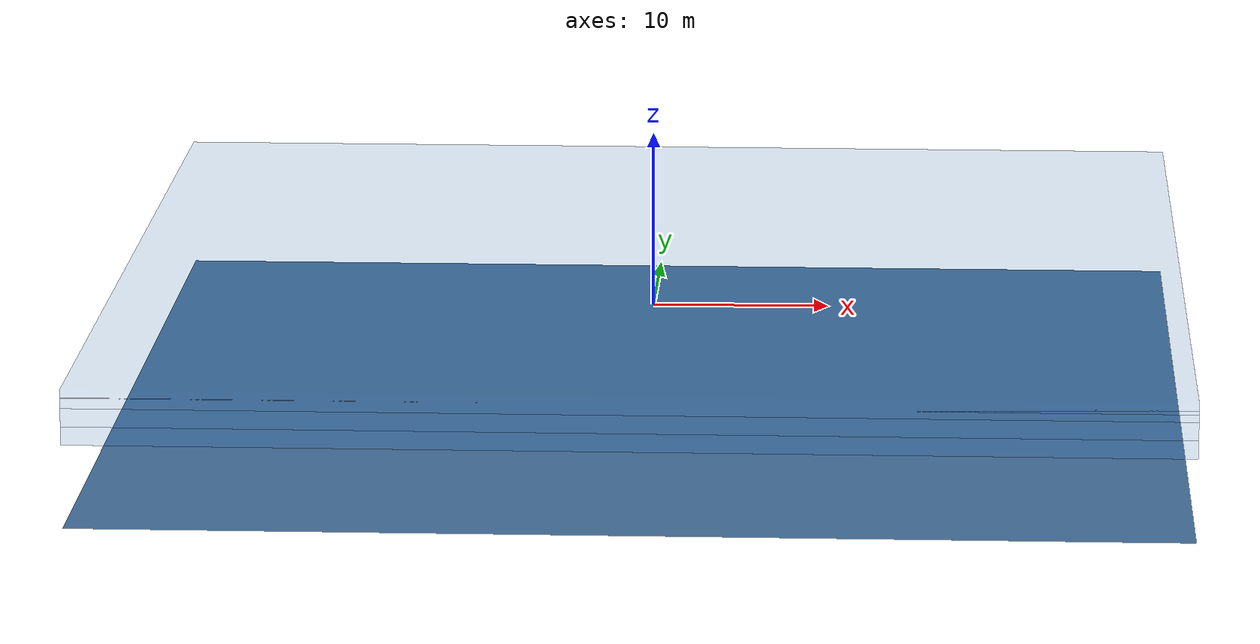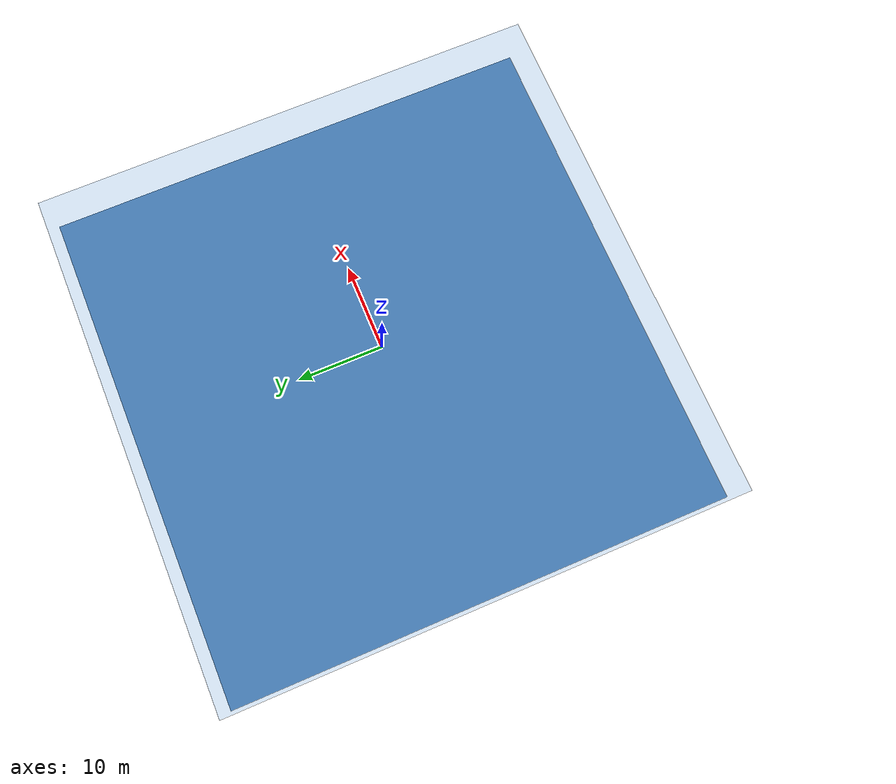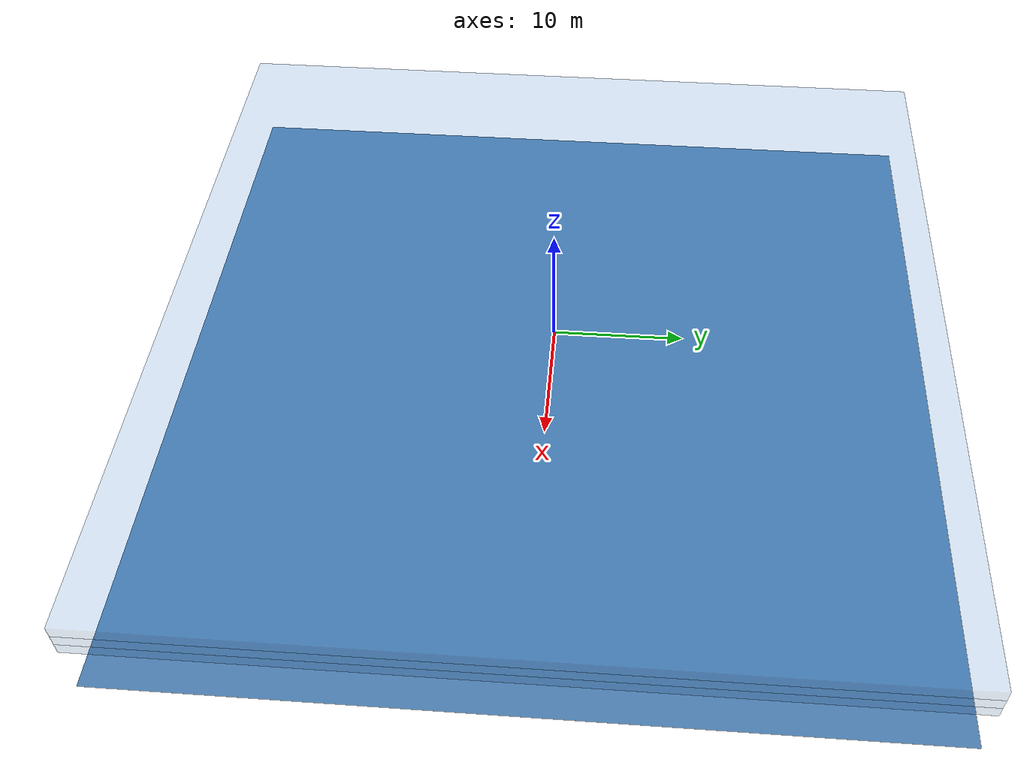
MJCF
<?xml version="1.0"?>
<!-- Full underwater environment with fluid dynamics -->
<mujoco model="underwater_full">
  <option timestep="0.001" gravity="0 0 -9.81" viscosity="0.01" density="1000"/>

  <asset>
    <material name="water" rgba="0.2 0.5 0.8 0.3"/>
    <material name="seafloor" rgba="0.3 0.5 0.7 1"/>
  </asset>

  <worldbody>
    <!-- Seafloor -->
    <geom name="seafloor" type="plane" size="30 30 0.1" pos="0 0 -5"
          material="seafloor" friction="0.5 0.1 0.01"/>

    <!-- Water volume with fluid dynamics -->
    <!-- MuJoCo doesn't have built-in fluid simulation, so we use:
         - Reduced gravity (buoyancy effect)
         - Viscosity for drag
         - Custom forces applied via actuators/sensors -->

    <!-- Water surface marker -->
    <geom name="water_surface" type="box" size="30 30 0.1" pos="0 0 2"
          rgba="0.2 0.5 0.8 0.2" contype="0" conaffinity="0"/>

    <!-- Buoyancy zones (using multiple geoms for different depths) -->
    <geom name="buoyancy_zone_1" type="box" size="30 30 0.5" pos="0 0 0"
          rgba="0.2 0.5 0.8 0.1" contype="0" conaffinity="0"/>
    <geom name="buoyancy_zone_2" type="box" size="30 30 0.5" pos="0 0 1"
          rgba="0.2 0.5 0.8 0.1" contype="0" conaffinity="0"/>
    <geom name="buoyancy_zone_3" type="box" size="30 30 0.5" pos="0 0 2"
          rgba="0.2 0.5 0.8 0.1" contype="0" conaffinity="0"/>
  </worldbody>

  <!-- Fluid dynamics sensors -->
  <sensor>
    <!-- Velocity sensors for drag calculation -->
    <framelinvel name="body_velocity" objtype="body" objname="torso"/>
    <framelinvel name="body_angular_vel" objtype="body" objname="torso"/>

    <!-- Depth sensor -->
    <framepos name="body_depth" objtype="body" objname="torso"/>
  </sensor>

  <!-- Custom actuators for fluid forces (applied via Python) -->
  <actuator>
    <!-- These will be controlled programmatically to apply buoyancy and drag -->
  </actuator>
</mujoco>
